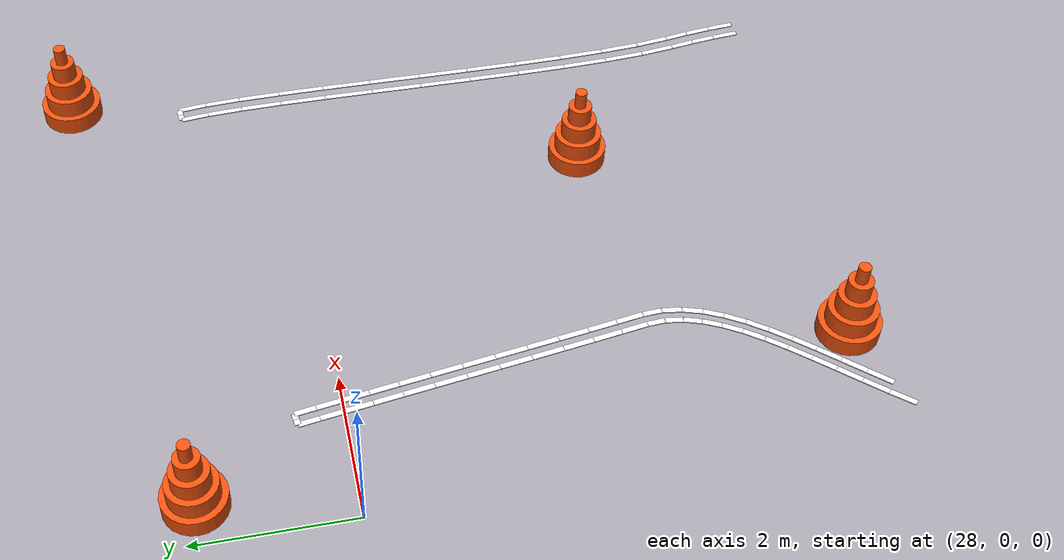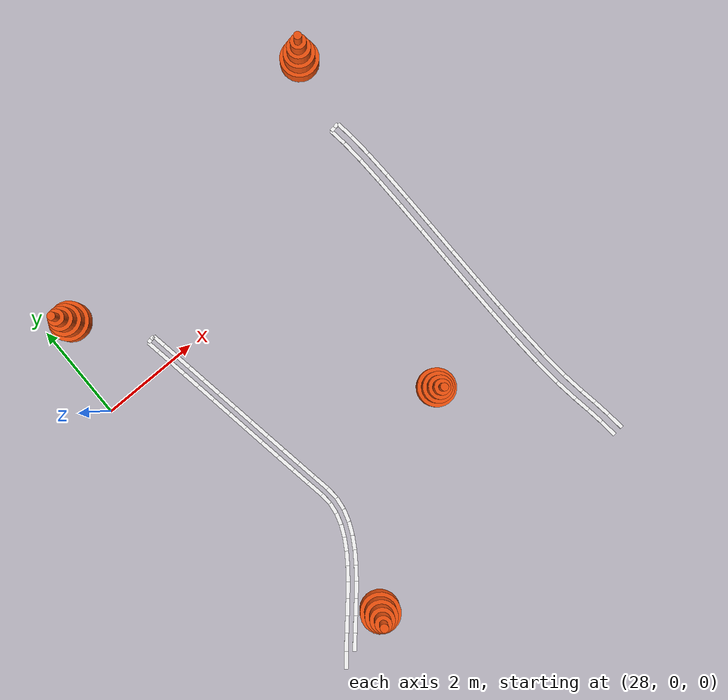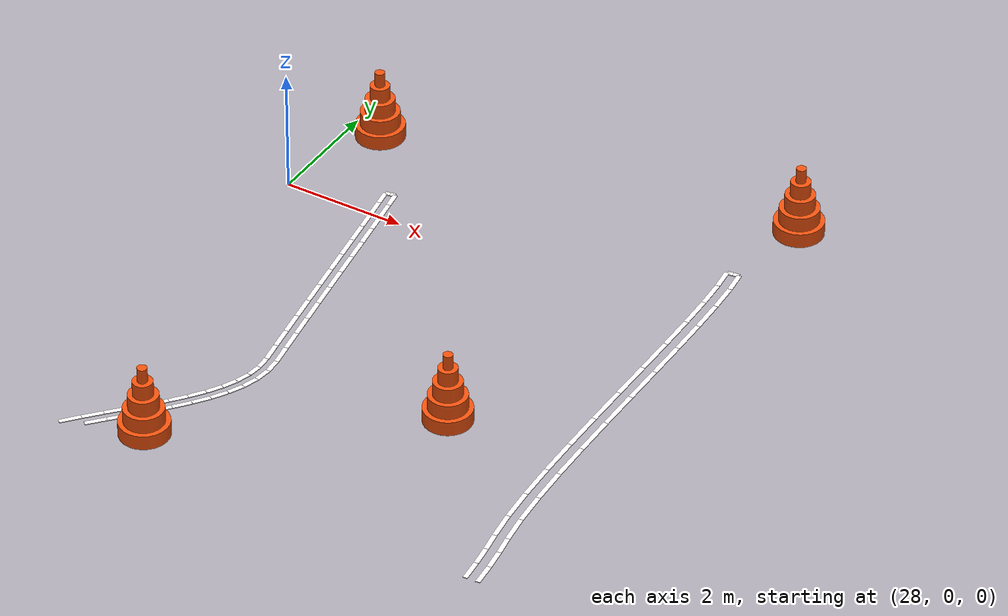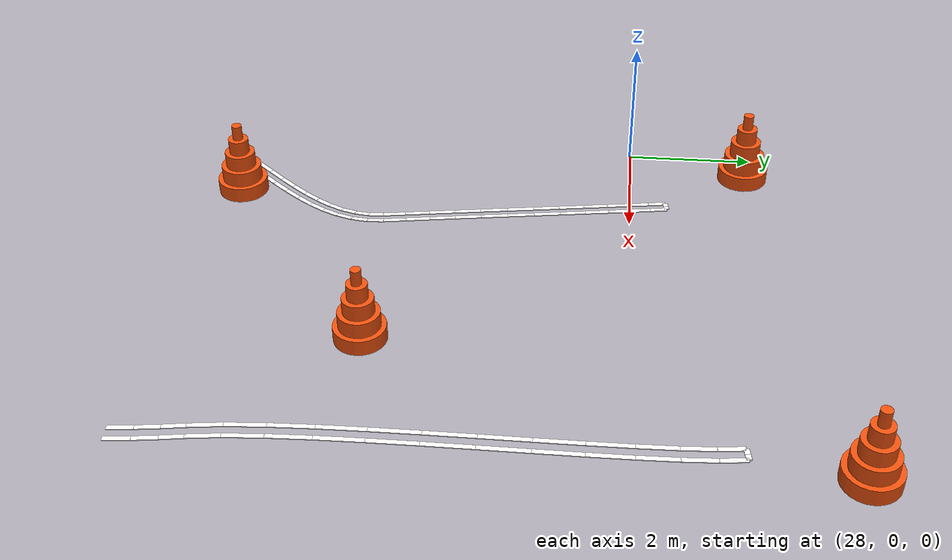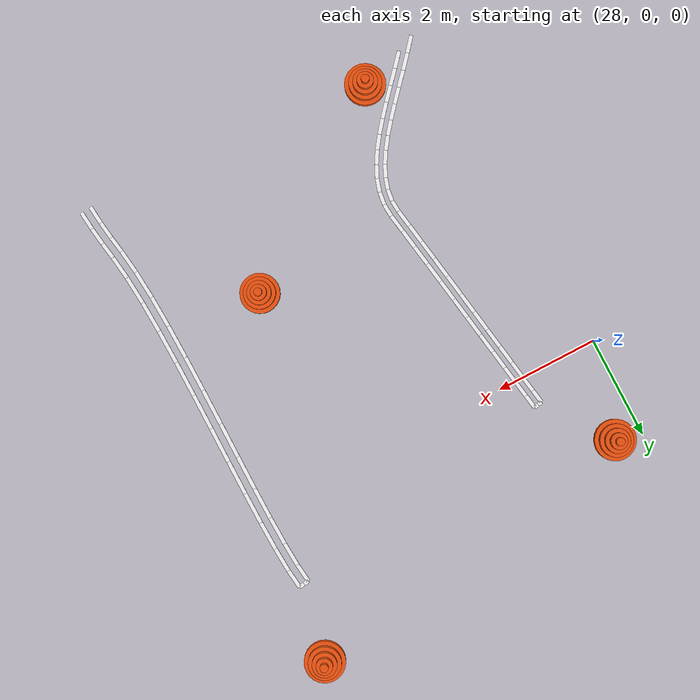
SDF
<sdf version="1.9">
 <world name="igvc_competition">
  <model name="Line_001_0404">
   <static>1</static>
   <pose>35.1947 -6.5043 0.011 0 0 1.657450</pose>
   <link name="link">
    <visual name="visual">
     <geometry><box><size>0.3593 0.0762 0.012</size></box></geometry>
     <material>
      <ambient>0.98 0.98 0.98 1</ambient>
      <diffuse>0.98 0.98 0.98 1</diffuse>
      <specular>0.05 0.05 0.05 1</specular>
      <emissive>0.9 0.9 0.9 1</emissive>
     </material>
    </visual>
   </link>
  </model>
  <model name="Line_001_0405">
   <static>1</static>
   <pose>35.3940 -6.4875 0.011 0 0 1.657652</pose>
   <link name="link">
    <visual name="visual">
     <geometry><box><size>0.3689 0.0762 0.012</size></box></geometry>
     <material>
      <ambient>0.98 0.98 0.98 1</ambient>
      <diffuse>0.98 0.98 0.98 1</diffuse>
      <specular>0.05 0.05 0.05 1</specular>
      <emissive>0.9 0.9 0.9 1</emissive>
     </material>
    </visual>
   </link>
  </model>
  <model name="Line_001_0406">
   <static>1</static>
   <pose>35.1574 -6.1561 0.011 0 0 1.698932</pose>
   <link name="link">
    <visual name="visual">
     <geometry><box><size>0.3412 0.0762 0.012</size></box></geometry>
     <material>
      <ambient>0.98 0.98 0.98 1</ambient>
      <diffuse>0.98 0.98 0.98 1</diffuse>
      <specular>0.05 0.05 0.05 1</specular>
      <emissive>0.9 0.9 0.9 1</emissive>
     </material>
    </visual>
   </link>
  </model>
  <model name="Line_001_0407">
   <static>1</static>
   <pose>35.3558 -6.1312 0.011 0 0 1.698715</pose>
   <link name="link">
    <visual name="visual">
     <geometry><box><size>0.3480 0.0762 0.012</size></box></geometry>
     <material>
      <ambient>0.98 0.98 0.98 1</ambient>
      <diffuse>0.98 0.98 0.98 1</diffuse>
      <specular>0.05 0.05 0.05 1</specular>
      <emissive>0.9 0.9 0.9 1</emissive>
     </material>
    </visual>
   </link>
  </model>
  <model name="Line_001_0408">
   <static>1</static>
   <pose>35.1105 -5.8269 0.011 0 0 1.726403</pose>
   <link name="link">
    <visual name="visual">
     <geometry><box><size>0.3239 0.0762 0.012</size></box></geometry>
     <material>
      <ambient>0.98 0.98 0.98 1</ambient>
      <diffuse>0.98 0.98 0.98 1</diffuse>
      <specular>0.05 0.05 0.05 1</specular>
      <emissive>0.9 0.9 0.9 1</emissive>
     </material>
    </visual>
   </link>
  </model>
  <model name="Line_001_0409">
   <static>1</static>
   <pose>35.3085 -5.7988 0.011 0 0 1.726595</pose>
   <link name="link">
    <visual name="visual">
     <geometry><box><size>0.3235 0.0762 0.012</size></box></geometry>
     <material>
      <ambient>0.98 0.98 0.98 1</ambient>
      <diffuse>0.98 0.98 0.98 1</diffuse>
      <specular>0.05 0.05 0.05 1</specular>
      <emissive>0.9 0.9 0.9 1</emissive>
     </material>
    </visual>
   </link>
  </model>
  <model name="Line_001_0410">
   <static>1</static>
   <pose>35.0559 -5.4306 0.011 0 0 1.694787</pose>
   <link name="link">
    <visual name="visual">
     <geometry><box><size>0.4763 0.0762 0.012</size></box></geometry>
     <material>
      <ambient>0.98 0.98 0.98 1</ambient>
      <diffuse>0.98 0.98 0.98 1</diffuse>
      <specular>0.05 0.05 0.05 1</specular>
      <emissive>0.9 0.9 0.9 1</emissive>
     </material>
    </visual>
   </link>
  </model>
  <model name="Line_001_0411">
   <static>1</static>
   <pose>35.2545 -5.4070 0.011 0 0 1.694727</pose>
   <link name="link">
    <visual name="visual">
     <geometry><box><size>0.4676 0.0762 0.012</size></box></geometry>
     <material>
      <ambient>0.98 0.98 0.98 1</ambient>
      <diffuse>0.98 0.98 0.98 1</diffuse>
      <specular>0.05 0.05 0.05 1</specular>
      <emissive>0.9 0.9 0.9 1</emissive>
     </material>
    </visual>
   </link>
  </model>
  <model name="Line_001_0412">
   <static>1</static>
   <pose>35.0069 -4.9139 0.011 0 0 1.640595</pose>
   <link name="link">
    <visual name="visual">
     <geometry><box><size>0.5621 0.0762 0.012</size></box></geometry>
     <material>
      <ambient>0.98 0.98 0.98 1</ambient>
      <diffuse>0.98 0.98 0.98 1</diffuse>
      <specular>0.05 0.05 0.05 1</specular>
      <emissive>0.9 0.9 0.9 1</emissive>
     </material>
    </visual>
   </link>
  </model>
  <model name="Line_001_0413">
   <static>1</static>
   <pose>35.2064 -4.8989 0.011 0 0 1.640417</pose>
   <link name="link">
    <visual name="visual">
     <geometry><box><size>0.5534 0.0762 0.012</size></box></geometry>
     <material>
      <ambient>0.98 0.98 0.98 1</ambient>
      <diffuse>0.98 0.98 0.98 1</diffuse>
      <specular>0.05 0.05 0.05 1</specular>
      <emissive>0.9 0.9 0.9 1</emissive>
     </material>
    </visual>
   </link>
  </model>
  <model name="Line_001_0414">
   <static>1</static>
   <pose>34.9758 -4.3197 0.011 0 0 1.607416</pose>
   <link name="link">
    <visual name="visual">
     <geometry><box><size>0.6282 0.0762 0.012</size></box></geometry>
     <material>
      <ambient>0.98 0.98 0.98 1</ambient>
      <diffuse>0.98 0.98 0.98 1</diffuse>
      <specular>0.05 0.05 0.05 1</specular>
      <emissive>0.9 0.9 0.9 1</emissive>
     </material>
    </visual>
   </link>
  </model>
  <model name="Line_001_0415">
   <static>1</static>
   <pose>35.1757 -4.3117 0.011 0 0 1.607579</pose>
   <link name="link">
    <visual name="visual">
     <geometry><box><size>0.6227 0.0762 0.012</size></box></geometry>
     <material>
      <ambient>0.98 0.98 0.98 1</ambient>
      <diffuse>0.98 0.98 0.98 1</diffuse>
      <specular>0.05 0.05 0.05 1</specular>
      <emissive>0.9 0.9 0.9 1</emissive>
     </material>
    </visual>
   </link>
  </model>
  <model name="Line_001_0416">
   <static>1</static>
   <pose>34.9590 -3.6678 0.011 0 0 1.586476</pose>
   <link name="link">
    <visual name="visual">
     <geometry><box><size>0.6761 0.0762 0.012</size></box></geometry>
     <material>
      <ambient>0.98 0.98 0.98 1</ambient>
      <diffuse>0.98 0.98 0.98 1</diffuse>
      <specular>0.05 0.05 0.05 1</specular>
      <emissive>0.9 0.9 0.9 1</emissive>
     </material>
    </visual>
   </link>
  </model>
  <model name="Line_001_0417">
   <static>1</static>
   <pose>35.1590 -3.6643 0.011 0 0 1.586404</pose>
   <link name="link">
    <visual name="visual">
     <geometry><box><size>0.6728 0.0762 0.012</size></box></geometry>
     <material>
      <ambient>0.98 0.98 0.98 1</ambient>
      <diffuse>0.98 0.98 0.98 1</diffuse>
      <specular>0.05 0.05 0.05 1</specular>
      <emissive>0.9 0.9 0.9 1</emissive>
     </material>
    </visual>
   </link>
  </model>
  <model name="Line_001_0418">
   <static>1</static>
   <pose>34.9527 -2.9772 0.011 0 0 1.573491</pose>
   <link name="link">
    <visual name="visual">
     <geometry><box><size>0.7051 0.0762 0.012</size></box></geometry>
     <material>
      <ambient>0.98 0.98 0.98 1</ambient>
      <diffuse>0.98 0.98 0.98 1</diffuse>
      <specular>0.05 0.05 0.05 1</specular>
      <emissive>0.9 0.9 0.9 1</emissive>
     </material>
    </visual>
   </link>
  </model>
  <model name="Line_001_0419">
   <static>1</static>
   <pose>35.1527 -2.9764 0.011 0 0 1.573499</pose>
   <link name="link">
    <visual name="visual">
     <geometry><box><size>0.7030 0.0762 0.012</size></box></geometry>
     <material>
      <ambient>0.98 0.98 0.98 1</ambient>
      <diffuse>0.98 0.98 0.98 1</diffuse>
      <specular>0.05 0.05 0.05 1</specular>
      <emissive>0.9 0.9 0.9 1</emissive>
     </material>
    </visual>
   </link>
  </model>
  <model name="Line_001_0420">
   <static>1</static>
   <pose>34.9534 -2.2672 0.011 0 0 1.566320</pose>
   <link name="link">
    <visual name="visual">
     <geometry><box><size>0.7149 0.0762 0.012</size></box></geometry>
     <material>
      <ambient>0.98 0.98 0.98 1</ambient>
      <diffuse>0.98 0.98 0.98 1</diffuse>
      <specular>0.05 0.05 0.05 1</specular>
      <emissive>0.9 0.9 0.9 1</emissive>
     </material>
    </visual>
   </link>
  </model>
  <model name="Line_001_0421">
   <static>1</static>
   <pose>35.1534 -2.2679 0.011 0 0 1.566315</pose>
   <link name="link">
    <visual name="visual">
     <geometry><box><size>0.7140 0.0762 0.012</size></box></geometry>
     <material>
      <ambient>0.98 0.98 0.98 1</ambient>
      <diffuse>0.98 0.98 0.98 1</diffuse>
      <specular>0.05 0.05 0.05 1</specular>
      <emissive>0.9 0.9 0.9 1</emissive>
     </material>
    </visual>
   </link>
  </model>
  <model name="Line_001_0422">
   <static>1</static>
   <pose>34.9573 -1.5572 0.011 0 0 1.564133</pose>
   <link name="link">
    <visual name="visual">
     <geometry><box><size>0.7053 0.0762 0.012</size></box></geometry>
     <material>
      <ambient>0.98 0.98 0.98 1</ambient>
      <diffuse>0.98 0.98 0.98 1</diffuse>
      <specular>0.05 0.05 0.05 1</specular>
      <emissive>0.9 0.9 0.9 1</emissive>
     </material>
    </visual>
   </link>
  </model>
  <model name="Line_001_0423">
   <static>1</static>
   <pose>35.1574 -1.5583 0.011 0 0 1.564133</pose>
   <link name="link">
    <visual name="visual">
     <geometry><box><size>0.7053 0.0762 0.012</size></box></geometry>
     <material>
      <ambient>0.98 0.98 0.98 1</ambient>
      <diffuse>0.98 0.98 0.98 1</diffuse>
      <specular>0.05 0.05 0.05 1</specular>
      <emissive>0.9 0.9 0.9 1</emissive>
     </material>
    </visual>
   </link>
  </model>
  <model name="Line_001_0424">
   <static>1</static>
   <pose>34.9611 -0.8664 0.011 0 0 1.566803</pose>
   <link name="link">
    <visual name="visual">
     <geometry><box><size>0.6761 0.0762 0.012</size></box></geometry>
     <material>
      <ambient>0.98 0.98 0.98 1</ambient>
      <diffuse>0.98 0.98 0.98 1</diffuse>
      <specular>0.05 0.05 0.05 1</specular>
      <emissive>0.9 0.9 0.9 1</emissive>
     </material>
    </visual>
   </link>
  </model>
  <model name="Line_001_0425">
   <static>1</static>
   <pose>35.1611 -0.8669 0.011 0 0 1.566810</pose>
   <link name="link">
    <visual name="visual">
     <geometry><box><size>0.6773 0.0762 0.012</size></box></geometry>
     <material>
      <ambient>0.98 0.98 0.98 1</ambient>
      <diffuse>0.98 0.98 0.98 1</diffuse>
      <specular>0.05 0.05 0.05 1</specular>
      <emissive>0.9 0.9 0.9 1</emissive>
     </material>
    </visual>
   </link>
  </model>
  <model name="Line_001_0426">
   <static>1</static>
   <pose>34.9609 -0.2147 0.011 0 0 1.575737</pose>
   <link name="link">
    <visual name="visual">
     <geometry><box><size>0.6275 0.0762 0.012</size></box></geometry>
     <material>
      <ambient>0.98 0.98 0.98 1</ambient>
      <diffuse>0.98 0.98 0.98 1</diffuse>
      <specular>0.05 0.05 0.05 1</specular>
      <emissive>0.9 0.9 0.9 1</emissive>
     </material>
    </visual>
   </link>
  </model>
  <model name="Line_001_0427">
   <static>1</static>
   <pose>35.1608 -0.2132 0.011 0 0 1.575716</pose>
   <link name="link">
    <visual name="visual">
     <geometry><box><size>0.6301 0.0762 0.012</size></box></geometry>
     <material>
      <ambient>0.98 0.98 0.98 1</ambient>
      <diffuse>0.98 0.98 0.98 1</diffuse>
      <specular>0.05 0.05 0.05 1</specular>
      <emissive>0.9 0.9 0.9 1</emissive>
     </material>
    </visual>
   </link>
  </model>
  <model name="Line_001_0428">
   <static>1</static>
   <pose>34.9532 0.3785 0.011 0 0 1.592625</pose>
   <link name="link">
    <visual name="visual">
     <geometry><box><size>0.5589 0.0762 0.012</size></box></geometry>
     <material>
      <ambient>0.98 0.98 0.98 1</ambient>
      <diffuse>0.98 0.98 0.98 1</diffuse>
      <specular>0.05 0.05 0.05 1</specular>
      <emissive>0.9 0.9 0.9 1</emissive>
     </material>
    </visual>
   </link>
  </model>
  <model name="Line_001_0429">
   <static>1</static>
   <pose>35.1531 0.3836 0.011 0 0 1.592794</pose>
   <link name="link">
    <visual name="visual">
     <geometry><box><size>0.5637 0.0762 0.012</size></box></geometry>
     <material>
      <ambient>0.98 0.98 0.98 1</ambient>
      <diffuse>0.98 0.98 0.98 1</diffuse>
      <specular>0.05 0.05 0.05 1</specular>
      <emissive>0.9 0.9 0.9 1</emissive>
     </material>
    </visual>
   </link>
  </model>
  <model name="Line_001_0430">
   <static>1</static>
   <pose>34.9346 0.8928 0.011 0 0 1.623949</pose>
   <link name="link">
    <visual name="visual">
     <geometry><box><size>0.4706 0.0762 0.012</size></box></geometry>
     <material>
      <ambient>0.98 0.98 0.98 1</ambient>
      <diffuse>0.98 0.98 0.98 1</diffuse>
      <specular>0.05 0.05 0.05 1</specular>
      <emissive>0.9 0.9 0.9 1</emissive>
     </material>
    </visual>
   </link>
  </model>
  <model name="Line_001_0431">
   <static>1</static>
   <pose>35.1342 0.9049 0.011 0 0 1.623982</pose>
   <link name="link">
    <visual name="visual">
     <geometry><box><size>0.4797 0.0762 0.012</size></box></geometry>
     <material>
      <ambient>0.98 0.98 0.98 1</ambient>
      <diffuse>0.98 0.98 0.98 1</diffuse>
      <specular>0.05 0.05 0.05 1</specular>
      <emissive>0.9 0.9 0.9 1</emissive>
     </material>
    </visual>
   </link>
  </model>
  <model name="Line_001_0432">
   <static>1</static>
   <pose>34.9303 1.4985 0.011 0 0 0.113309</pose>
   <link name="link">
    <visual name="visual">
     <geometry><box><size>0.0999 0.0762 0.012</size></box></geometry>
     <material>
      <ambient>0.98 0.98 0.98 1</ambient>
      <diffuse>0.98 0.98 0.98 1</diffuse>
      <specular>0.05 0.05 0.05 1</specular>
      <emissive>0.9 0.9 0.9 1</emissive>
     </material>
    </visual>
   </link>
  </model>
  <model name="Line_001_0433">
   <static>1</static>
   <pose>34.9014 1.3103 0.011 0 0 1.683738</pose>
   <link name="link">
    <visual name="visual">
     <geometry><box><size>0.3673 0.0762 0.012</size></box></geometry>
     <material>
      <ambient>0.98 0.98 0.98 1</ambient>
      <diffuse>0.98 0.98 0.98 1</diffuse>
      <specular>0.05 0.05 0.05 1</specular>
      <emissive>0.9 0.9 0.9 1</emissive>
     </material>
    </visual>
   </link>
  </model>
  <model name="Line_001_0434">
   <static>1</static>
   <pose>35.1004 1.3299 0.011 0 0 1.683524</pose>
   <link name="link">
    <visual name="visual">
     <geometry><box><size>0.3734 0.0762 0.012</size></box></geometry>
     <material>
      <ambient>0.98 0.98 0.98 1</ambient>
      <diffuse>0.98 0.98 0.98 1</diffuse>
      <specular>0.05 0.05 0.05 1</specular>
      <emissive>0.9 0.9 0.9 1</emissive>
     </material>
    </visual>
   </link>
  </model>
  <model name="Line_001_0435">
   <static>1</static>
   <pose>35.0297 1.5097 0.011 0 0 -3.028397</pose>
   <link name="link">
    <visual name="visual">
     <geometry><box><size>0.1000 0.0762 0.012</size></box></geometry>
     <material>
      <ambient>0.98 0.98 0.98 1</ambient>
      <diffuse>0.98 0.98 0.98 1</diffuse>
      <specular>0.05 0.05 0.05 1</specular>
      <emissive>0.9 0.9 0.9 1</emissive>
     </material>
    </visual>
   </link>
  </model>
  <model name="Line_002_0386">
   <static>1</static>
   <pose>28.4415 -6.5848 0.011 0 0 0.865637</pose>
   <link name="link">
    <visual name="visual">
     <geometry><box><size>0.3379 0.0762 0.012</size></box></geometry>
     <material>
      <ambient>0.98 0.98 0.98 1</ambient>
      <diffuse>0.98 0.98 0.98 1</diffuse>
      <specular>0.05 0.05 0.05 1</specular>
      <emissive>0.9 0.9 0.9 1</emissive>
     </material>
    </visual>
   </link>
  </model>
  <model name="Line_002_0388">
   <static>1</static>
   <pose>28.6637 -6.3296 0.011 0 0 0.843419</pose>
   <link name="link">
    <visual name="visual">
     <geometry><box><size>0.3390 0.0762 0.012</size></box></geometry>
     <material>
      <ambient>0.98 0.98 0.98 1</ambient>
      <diffuse>0.98 0.98 0.98 1</diffuse>
      <specular>0.05 0.05 0.05 1</specular>
      <emissive>0.9 0.9 0.9 1</emissive>
     </material>
    </visual>
   </link>
  </model>
  <model name="Line_002_0389">
   <static>1</static>
   <pose>28.7871 -6.4318 0.011 0 0 0.843019</pose>
   <link name="link">
    <visual name="visual">
     <geometry><box><size>0.3364 0.0762 0.012</size></box></geometry>
     <material>
      <ambient>0.98 0.98 0.98 1</ambient>
      <diffuse>0.98 0.98 0.98 1</diffuse>
      <specular>0.05 0.05 0.05 1</specular>
      <emissive>0.9 0.9 0.9 1</emissive>
     </material>
    </visual>
   </link>
  </model>
  <model name="Line_002_0390">
   <static>1</static>
   <pose>28.8882 -6.0798 0.011 0 0 0.833850</pose>
   <link name="link">
    <visual name="visual">
     <geometry><box><size>0.3329 0.0762 0.012</size></box></geometry>
     <material>
      <ambient>0.98 0.98 0.98 1</ambient>
      <diffuse>0.98 0.98 0.98 1</diffuse>
      <specular>0.05 0.05 0.05 1</specular>
      <emissive>0.9 0.9 0.9 1</emissive>
     </material>
    </visual>
   </link>
  </model>
  <model name="Line_002_0391">
   <static>1</static>
   <pose>29.0107 -6.1831 0.011 0 0 0.833912</pose>
   <link name="link">
    <visual name="visual">
     <geometry><box><size>0.3324 0.0762 0.012</size></box></geometry>
     <material>
      <ambient>0.98 0.98 0.98 1</ambient>
      <diffuse>0.98 0.98 0.98 1</diffuse>
      <specular>0.05 0.05 0.05 1</specular>
      <emissive>0.9 0.9 0.9 1</emissive>
     </material>
    </visual>
   </link>
  </model>
  <model name="Line_002_0392">
   <static>1</static>
   <pose>29.1084 -5.8361 0.011 0 0 0.838234</pose>
   <link name="link">
    <visual name="visual">
     <geometry><box><size>0.3240 0.0762 0.012</size></box></geometry>
     <material>
      <ambient>0.98 0.98 0.98 1</ambient>
      <diffuse>0.98 0.98 0.98 1</diffuse>
      <specular>0.05 0.05 0.05 1</specular>
      <emissive>0.9 0.9 0.9 1</emissive>
     </material>
    </visual>
   </link>
  </model>
  <model name="Line_002_0393">
   <static>1</static>
   <pose>29.2314 -5.9389 0.011 0 0 0.838141</pose>
   <link name="link">
    <visual name="visual">
     <geometry><box><size>0.3259 0.0762 0.012</size></box></geometry>
     <material>
      <ambient>0.98 0.98 0.98 1</ambient>
      <diffuse>0.98 0.98 0.98 1</diffuse>
      <specular>0.05 0.05 0.05 1</specular>
      <emissive>0.9 0.9 0.9 1</emissive>
     </material>
    </visual>
   </link>
  </model>
  <model name="Line_002_0394">
   <static>1</static>
   <pose>29.3192 -5.5976 0.011 0 0 0.856512</pose>
   <link name="link">
    <visual name="visual">
     <geometry><box><size>0.3125 0.0762 0.012</size></box></geometry>
     <material>
      <ambient>0.98 0.98 0.98 1</ambient>
      <diffuse>0.98 0.98 0.98 1</diffuse>
      <specular>0.05 0.05 0.05 1</specular>
      <emissive>0.9 0.9 0.9 1</emissive>
     </material>
    </visual>
   </link>
  </model>
  <model name="Line_002_0395">
   <static>1</static>
   <pose>29.4442 -5.6980 0.011 0 0 0.856658</pose>
   <link name="link">
    <visual name="visual">
     <geometry><box><size>0.3168 0.0762 0.012</size></box></geometry>
     <material>
      <ambient>0.98 0.98 0.98 1</ambient>
      <diffuse>0.98 0.98 0.98 1</diffuse>
      <specular>0.05 0.05 0.05 1</specular>
      <emissive>0.9 0.9 0.9 1</emissive>
     </material>
    </visual>
   </link>
  </model>
  <model name="Line_002_0396">
   <static>1</static>
   <pose>29.5153 -5.3634 0.011 0 0 0.891713</pose>
   <link name="link">
    <visual name="visual">
     <geometry><box><size>0.2985 0.0762 0.012</size></box></geometry>
     <material>
      <ambient>0.98 0.98 0.98 1</ambient>
      <diffuse>0.98 0.98 0.98 1</diffuse>
      <specular>0.05 0.05 0.05 1</specular>
      <emissive>0.9 0.9 0.9 1</emissive>
     </material>
    </visual>
   </link>
  </model>
  <model name="Line_002_0397">
   <static>1</static>
   <pose>29.6439 -5.4593 0.011 0 0 0.891970</pose>
   <link name="link">
    <visual name="visual">
     <geometry><box><size>0.3058 0.0762 0.012</size></box></geometry>
     <material>
      <ambient>0.98 0.98 0.98 1</ambient>
      <diffuse>0.98 0.98 0.98 1</diffuse>
      <specular>0.05 0.05 0.05 1</specular>
      <emissive>0.9 0.9 0.9 1</emissive>
     </material>
    </visual>
   </link>
  </model>
  <model name="Line_002_0398">
   <static>1</static>
   <pose>29.6917 -5.1326 0.011 0 0 0.945981</pose>
   <link name="link">
    <visual name="visual">
     <geometry><box><size>0.2826 0.0762 0.012</size></box></geometry>
     <material>
      <ambient>0.98 0.98 0.98 1</ambient>
      <diffuse>0.98 0.98 0.98 1</diffuse>
      <specular>0.05 0.05 0.05 1</specular>
      <emissive>0.9 0.9 0.9 1</emissive>
     </material>
    </visual>
   </link>
  </model>
  <model name="Line_002_0399">
   <static>1</static>
   <pose>29.8256 -5.2214 0.011 0 0 0.946264</pose>
   <link name="link">
    <visual name="visual">
     <geometry><box><size>0.2931 0.0762 0.012</size></box></geometry>
     <material>
      <ambient>0.98 0.98 0.98 1</ambient>
      <diffuse>0.98 0.98 0.98 1</diffuse>
      <specular>0.05 0.05 0.05 1</specular>
      <emissive>0.9 0.9 0.9 1</emissive>
     </material>
    </visual>
   </link>
  </model>
  <model name="Line_002_0400">
   <static>1</static>
   <pose>29.8433 -4.9047 0.011 0 0 1.023979</pose>
   <link name="link">
    <visual name="visual">
     <geometry><box><size>0.2654 0.0762 0.012</size></box></geometry>
     <material>
      <ambient>0.98 0.98 0.98 1</ambient>
      <diffuse>0.98 0.98 0.98 1</diffuse>
      <specular>0.05 0.05 0.05 1</specular>
      <emissive>0.9 0.9 0.9 1</emissive>
     </material>
    </visual>
   </link>
  </model>
  <model name="Line_002_0401">
   <static>1</static>
   <pose>29.9840 -4.9829 0.011 0 0 1.024313</pose>
   <link name="link">
    <visual name="visual">
     <geometry><box><size>0.2800 0.0762 0.012</size></box></geometry>
     <material>
      <ambient>0.98 0.98 0.98 1</ambient>
      <diffuse>0.98 0.98 0.98 1</diffuse>
      <specular>0.05 0.05 0.05 1</specular>
      <emissive>0.9 0.9 0.9 1</emissive>
     </material>
    </visual>
   </link>
  </model>
  <model name="Line_002_0402">
   <static>1</static>
   <pose>29.9654 -4.6789 0.011 0 0 1.129819</pose>
   <link name="link">
    <visual name="visual">
     <geometry><box><size>0.2486 0.0762 0.012</size></box></geometry>
     <material>
      <ambient>0.98 0.98 0.98 1</ambient>
      <diffuse>0.98 0.98 0.98 1</diffuse>
      <specular>0.05 0.05 0.05 1</specular>
      <emissive>0.9 0.9 0.9 1</emissive>
     </material>
    </visual>
   </link>
  </model>
  <model name="Line_002_0403">
   <static>1</static>
   <pose>30.1139 -4.7422 0.011 0 0 1.130358</pose>
   <link name="link">
    <visual name="visual">
     <geometry><box><size>0.2679 0.0762 0.012</size></box></geometry>
     <material>
      <ambient>0.98 0.98 0.98 1</ambient>
      <diffuse>0.98 0.98 0.98 1</diffuse>
      <specular>0.05 0.05 0.05 1</specular>
      <emissive>0.9 0.9 0.9 1</emissive>
     </material>
    </visual>
   </link>
  </model>
  <model name="Line_002_0404">
   <static>1</static>
   <pose>30.0534 -4.4547 0.011 0 0 1.267402</pose>
   <link name="link">
    <visual name="visual">
     <geometry><box><size>0.2343 0.0762 0.012</size></box></geometry>
     <material>
      <ambient>0.98 0.98 0.98 1</ambient>
      <diffuse>0.98 0.98 0.98 1</diffuse>
      <specular>0.05 0.05 0.05 1</specular>
      <emissive>0.9 0.9 0.9 1</emissive>
     </material>
    </visual>
   </link>
  </model>
  <model name="Line_002_0405">
   <static>1</static>
   <pose>30.2095 -4.4977 0.011 0 0 1.268397</pose>
   <link name="link">
    <visual name="visual">
     <geometry><box><size>0.2582 0.0762 0.012</size></box></geometry>
     <material>
      <ambient>0.98 0.98 0.98 1</ambient>
      <diffuse>0.98 0.98 0.98 1</diffuse>
      <specular>0.05 0.05 0.05 1</specular>
      <emissive>0.9 0.9 0.9 1</emissive>
     </material>
    </visual>
   </link>
  </model>
  <model name="Line_002_0406">
   <static>1</static>
   <pose>30.1033 -4.2310 0.011 0 0 1.438362</pose>
   <link name="link">
    <visual name="visual">
     <geometry><box><size>0.2257 0.0762 0.012</size></box></geometry>
     <material>
      <ambient>0.98 0.98 0.98 1</ambient>
      <diffuse>0.98 0.98 0.98 1</diffuse>
      <specular>0.05 0.05 0.05 1</specular>
      <emissive>0.9 0.9 0.9 1</emissive>
     </material>
    </visual>
   </link>
  </model>
  <model name="Line_002_0407">
   <static>1</static>
   <pose>30.2646 -4.2486 0.011 0 0 1.438869</pose>
   <link name="link">
    <visual name="visual">
     <geometry><box><size>0.2539 0.0762 0.012</size></box></geometry>
     <material>
      <ambient>0.98 0.98 0.98 1</ambient>
      <diffuse>0.98 0.98 0.98 1</diffuse>
      <specular>0.05 0.05 0.05 1</specular>
      <emissive>0.9 0.9 0.9 1</emissive>
     </material>
    </visual>
   </link>
  </model>
  <model name="Line_002_0408">
   <static>1</static>
   <pose>30.1108 -4.0041 0.011 0 0 1.635000</pose>
   <link name="link">
    <visual name="visual">
     <geometry><box><size>0.2307 0.0762 0.012</size></box></geometry>
     <material>
      <ambient>0.98 0.98 0.98 1</ambient>
      <diffuse>0.98 0.98 0.98 1</diffuse>
      <specular>0.05 0.05 0.05 1</specular>
      <emissive>0.9 0.9 0.9 1</emissive>
     </material>
    </visual>
   </link>
  </model>
  <model name="Line_002_0409">
   <static>1</static>
   <pose>30.2735 -3.9964 0.011 0 0 1.632846</pose>
   <link name="link">
    <visual name="visual">
     <geometry><box><size>0.2532 0.0762 0.012</size></box></geometry>
     <material>
      <ambient>0.98 0.98 0.98 1</ambient>
      <diffuse>0.98 0.98 0.98 1</diffuse>
      <specular>0.05 0.05 0.05 1</specular>
      <emissive>0.9 0.9 0.9 1</emissive>
     </material>
    </visual>
   </link>
  </model>
  <model name="Line_002_0410">
   <static>1</static>
   <pose>30.0753 -3.7176 0.011 0 0 1.733248</pose>
   <link name="link">
    <visual name="visual">
     <geometry><box><size>0.3475 0.0762 0.012</size></box></geometry>
     <material>
      <ambient>0.98 0.98 0.98 1</ambient>
      <diffuse>0.98 0.98 0.98 1</diffuse>
      <specular>0.05 0.05 0.05 1</specular>
      <emissive>0.9 0.9 0.9 1</emissive>
     </material>
    </visual>
   </link>
  </model>
  <model name="Line_002_0411">
   <static>1</static>
   <pose>30.2370 -3.6951 0.011 0 0 1.732747</pose>
   <link name="link">
    <visual name="visual">
     <geometry><box><size>0.3547 0.0762 0.012</size></box></geometry>
     <material>
      <ambient>0.98 0.98 0.98 1</ambient>
      <diffuse>0.98 0.98 0.98 1</diffuse>
      <specular>0.05 0.05 0.05 1</specular>
      <emissive>0.9 0.9 0.9 1</emissive>
     </material>
    </visual>
   </link>
  </model>
  <model name="Line_002_0412">
   <static>1</static>
   <pose>30.0172 -3.3587 0.011 0 0 1.729795</pose>
   <link name="link">
    <visual name="visual">
     <geometry><box><size>0.3796 0.0762 0.012</size></box></geometry>
     <material>
      <ambient>0.98 0.98 0.98 1</ambient>
      <diffuse>0.98 0.98 0.98 1</diffuse>
      <specular>0.05 0.05 0.05 1</specular>
      <emissive>0.9 0.9 0.9 1</emissive>
     </material>
    </visual>
   </link>
  </model>
  <model name="Line_002_0413">
   <static>1</static>
   <pose>30.1784 -3.3328 0.011 0 0 1.729702</pose>
   <link name="link">
    <visual name="visual">
     <geometry><box><size>0.3792 0.0762 0.012</size></box></geometry>
     <material>
      <ambient>0.98 0.98 0.98 1</ambient>
      <diffuse>0.98 0.98 0.98 1</diffuse>
      <specular>0.05 0.05 0.05 1</specular>
      <emissive>0.9 0.9 0.9 1</emissive>
     </material>
    </visual>
   </link>
  </model>
  <model name="Line_002_0414">
   <static>1</static>
   <pose>29.9559 -2.9734 0.011 0 0 1.727411</pose>
   <link name="link">
    <visual name="visual">
     <geometry><box><size>0.4007 0.0762 0.012</size></box></geometry>
     <material>
      <ambient>0.98 0.98 0.98 1</ambient>
      <diffuse>0.98 0.98 0.98 1</diffuse>
      <specular>0.05 0.05 0.05 1</specular>
      <emissive>0.9 0.9 0.9 1</emissive>
     </material>
    </visual>
   </link>
  </model>
  <model name="Line_002_0415">
   <static>1</static>
   <pose>30.1171 -2.9478 0.011 0 0 1.727489</pose>
   <link name="link">
    <visual name="visual">
     <geometry><box><size>0.4005 0.0762 0.012</size></box></geometry>
     <material>
      <ambient>0.98 0.98 0.98 1</ambient>
      <diffuse>0.98 0.98 0.98 1</diffuse>
      <specular>0.05 0.05 0.05 1</specular>
      <emissive>0.9 0.9 0.9 1</emissive>
     </material>
    </visual>
   </link>
  </model>
  <model name="Line_002_0416">
   <static>1</static>
   <pose>29.8926 -2.5706 0.011 0 0 1.725719</pose>
   <link name="link">
    <visual name="visual">
     <geometry><box><size>0.4148 0.0762 0.012</size></box></geometry>
     <material>
      <ambient>0.98 0.98 0.98 1</ambient>
      <diffuse>0.98 0.98 0.98 1</diffuse>
      <specular>0.05 0.05 0.05 1</specular>
      <emissive>0.9 0.9 0.9 1</emissive>
     </material>
    </visual>
   </link>
  </model>
  <model name="Line_002_0417">
   <static>1</static>
   <pose>30.0540 -2.5453 0.011 0 0 1.725592</pose>
   <link name="link">
    <visual name="visual">
     <geometry><box><size>0.4145 0.0762 0.012</size></box></geometry>
     <material>
      <ambient>0.98 0.98 0.98 1</ambient>
      <diffuse>0.98 0.98 0.98 1</diffuse>
      <specular>0.05 0.05 0.05 1</specular>
      <emissive>0.9 0.9 0.9 1</emissive>
     </material>
    </visual>
   </link>
  </model>
  <model name="Line_002_0418">
   <static>1</static>
   <pose>29.8283 -2.1574 0.011 0 0 1.724834</pose>
   <link name="link">
    <visual name="visual">
     <geometry><box><size>0.4217 0.0762 0.012</size></box></geometry>
     <material>
      <ambient>0.98 0.98 0.98 1</ambient>
      <diffuse>0.98 0.98 0.98 1</diffuse>
      <specular>0.05 0.05 0.05 1</specular>
      <emissive>0.9 0.9 0.9 1</emissive>
     </material>
    </visual>
   </link>
  </model>
  <model name="Line_002_0419">
   <static>1</static>
   <pose>29.9897 -2.1322 0.011 0 0 1.724636</pose>
   <link name="link">
    <visual name="visual">
     <geometry><box><size>0.4216 0.0762 0.012</size></box></geometry>
     <material>
      <ambient>0.98 0.98 0.98 1</ambient>
      <diffuse>0.98 0.98 0.98 1</diffuse>
      <specular>0.05 0.05 0.05 1</specular>
      <emissive>0.9 0.9 0.9 1</emissive>
     </material>
    </visual>
   </link>
  </model>
  <model name="Line_002_0420">
   <static>1</static>
   <pose>29.7638 -1.7408 0.011 0 0 1.723969</pose>
   <link name="link">
    <visual name="visual">
     <geometry><box><size>0.4214 0.0762 0.012</size></box></geometry>
     <material>
      <ambient>0.98 0.98 0.98 1</ambient>
      <diffuse>0.98 0.98 0.98 1</diffuse>
      <specular>0.05 0.05 0.05 1</specular>
      <emissive>0.9 0.9 0.9 1</emissive>
     </material>
    </visual>
   </link>
  </model>
  <model name="Line_002_0421">
   <static>1</static>
   <pose>29.9252 -1.7157 0.011 0 0 1.724005</pose>
   <link name="link">
    <visual name="visual">
     <geometry><box><size>0.4213 0.0762 0.012</size></box></geometry>
     <material>
      <ambient>0.98 0.98 0.98 1</ambient>
      <diffuse>0.98 0.98 0.98 1</diffuse>
      <specular>0.05 0.05 0.05 1</specular>
      <emissive>0.9 0.9 0.9 1</emissive>
     </material>
    </visual>
   </link>
  </model>
  <model name="Line_002_0422">
   <static>1</static>
   <pose>29.7001 -1.3278 0.011 0 0 1.723758</pose>
   <link name="link">
    <visual name="visual">
     <geometry><box><size>0.4141 0.0762 0.012</size></box></geometry>
     <material>
      <ambient>0.98 0.98 0.98 1</ambient>
      <diffuse>0.98 0.98 0.98 1</diffuse>
      <specular>0.05 0.05 0.05 1</specular>
      <emissive>0.9 0.9 0.9 1</emissive>
     </material>
    </visual>
   </link>
  </model>
  <model name="Line_002_0423">
   <static>1</static>
   <pose>29.8615 -1.3029 0.011 0 0 1.723996</pose>
   <link name="link">
    <visual name="visual">
     <geometry><box><size>0.4142 0.0762 0.012</size></box></geometry>
     <material>
      <ambient>0.98 0.98 0.98 1</ambient>
      <diffuse>0.98 0.98 0.98 1</diffuse>
      <specular>0.05 0.05 0.05 1</specular>
      <emissive>0.9 0.9 0.9 1</emissive>
     </material>
    </visual>
   </link>
  </model>
  <model name="Line_002_0424">
   <static>1</static>
   <pose>29.6380 -0.9257 0.011 0 0 1.724055</pose>
   <link name="link">
    <visual name="visual">
     <geometry><box><size>0.3996 0.0762 0.012</size></box></geometry>
     <material>
      <ambient>0.98 0.98 0.98 1</ambient>
      <diffuse>0.98 0.98 0.98 1</diffuse>
      <specular>0.05 0.05 0.05 1</specular>
      <emissive>0.9 0.9 0.9 1</emissive>
     </material>
    </visual>
   </link>
  </model>
  <model name="Line_002_0425">
   <static>1</static>
   <pose>29.7994 -0.9007 0.011 0 0 1.724016</pose>
   <link name="link">
    <visual name="visual">
     <geometry><box><size>0.3997 0.0762 0.012</size></box></geometry>
     <material>
      <ambient>0.98 0.98 0.98 1</ambient>
      <diffuse>0.98 0.98 0.98 1</diffuse>
      <specular>0.05 0.05 0.05 1</specular>
      <emissive>0.9 0.9 0.9 1</emissive>
     </material>
    </visual>
   </link>
  </model>
  <model name="Line_002_0426">
   <static>1</static>
   <pose>29.5785 -0.5415 0.011 0 0 1.724813</pose>
   <link name="link">
    <visual name="visual">
     <geometry><box><size>0.3781 0.0762 0.012</size></box></geometry>
     <material>
      <ambient>0.98 0.98 0.98 1</ambient>
      <diffuse>0.98 0.98 0.98 1</diffuse>
      <specular>0.05 0.05 0.05 1</specular>
      <emissive>0.9 0.9 0.9 1</emissive>
     </material>
    </visual>
   </link>
  </model>
  <model name="Line_002_0427">
   <static>1</static>
   <pose>29.7399 -0.5163 0.011 0 0 1.724732</pose>
   <link name="link">
    <visual name="visual">
     <geometry><box><size>0.3783 0.0762 0.012</size></box></geometry>
     <material>
      <ambient>0.98 0.98 0.98 1</ambient>
      <diffuse>0.98 0.98 0.98 1</diffuse>
      <specular>0.05 0.05 0.05 1</specular>
      <emissive>0.9 0.9 0.9 1</emissive>
     </material>
    </visual>
   </link>
  </model>
  <model name="Line_002_0428">
   <static>1</static>
   <pose>29.5224 -0.1821 0.011 0 0 1.726253</pose>
   <link name="link">
    <visual name="visual">
     <geometry><box><size>0.3494 0.0762 0.012</size></box></geometry>
     <material>
      <ambient>0.98 0.98 0.98 1</ambient>
      <diffuse>0.98 0.98 0.98 1</diffuse>
      <specular>0.05 0.05 0.05 1</specular>
      <emissive>0.9 0.9 0.9 1</emissive>
     </material>
    </visual>
   </link>
  </model>
  <model name="Line_002_0429">
   <static>1</static>
   <pose>29.6838 -0.1567 0.011 0 0 1.726447</pose>
   <link name="link">
    <visual name="visual">
     <geometry><box><size>0.3496 0.0762 0.012</size></box></geometry>
     <material>
      <ambient>0.98 0.98 0.98 1</ambient>
      <diffuse>0.98 0.98 0.98 1</diffuse>
      <specular>0.05 0.05 0.05 1</specular>
      <emissive>0.9 0.9 0.9 1</emissive>
     </material>
    </visual>
   </link>
  </model>
  <model name="Line_002_0430">
   <static>1</static>
   <pose>29.4708 0.1452 0.011 0 0 1.728758</pose>
   <link name="link">
    <visual name="visual">
     <geometry><box><size>0.3134 0.0762 0.012</size></box></geometry>
     <material>
      <ambient>0.98 0.98 0.98 1</ambient>
      <diffuse>0.98 0.98 0.98 1</diffuse>
      <specular>0.05 0.05 0.05 1</specular>
      <emissive>0.9 0.9 0.9 1</emissive>
     </material>
    </visual>
   </link>
  </model>
  <model name="Line_002_0431">
   <static>1</static>
   <pose>29.6320 0.1711 0.011 0 0 1.728458</pose>
   <link name="link">
    <visual name="visual">
     <geometry><box><size>0.3140 0.0762 0.012</size></box></geometry>
     <material>
      <ambient>0.98 0.98 0.98 1</ambient>
      <diffuse>0.98 0.98 0.98 1</diffuse>
      <specular>0.05 0.05 0.05 1</specular>
      <emissive>0.9 0.9 0.9 1</emissive>
     </material>
    </visual>
   </link>
  </model>
  <model name="Line_002_0432">
   <static>1</static>
   <pose>29.4431 0.5737 0.011 0 0 0.162745</pose>
   <link name="link">
    <visual name="visual">
     <geometry><box><size>0.0821 0.0762 0.012</size></box></geometry>
     <material>
      <ambient>0.98 0.98 0.98 1</ambient>
      <diffuse>0.98 0.98 0.98 1</diffuse>
      <specular>0.05 0.05 0.05 1</specular>
      <emissive>0.9 0.9 0.9 1</emissive>
     </material>
    </visual>
   </link>
  </model>
  <model name="Line_002_0433">
   <static>1</static>
   <pose>29.4244 0.4335 0.011 0 0 1.732239</pose>
   <link name="link">
    <visual name="visual">
     <geometry><box><size>0.2706 0.0762 0.012</size></box></geometry>
     <material>
      <ambient>0.98 0.98 0.98 1</ambient>
      <diffuse>0.98 0.98 0.98 1</diffuse>
      <specular>0.05 0.05 0.05 1</specular>
      <emissive>0.9 0.9 0.9 1</emissive>
     </material>
    </visual>
   </link>
  </model>
  <model name="Line_002_0434">
   <static>1</static>
   <pose>29.5856 0.4598 0.011 0 0 1.732426</pose>
   <link name="link">
    <visual name="visual">
     <geometry><box><size>0.2709 0.0762 0.012</size></box></geometry>
     <material>
      <ambient>0.98 0.98 0.98 1</ambient>
      <diffuse>0.98 0.98 0.98 1</diffuse>
      <specular>0.05 0.05 0.05 1</specular>
      <emissive>0.9 0.9 0.9 1</emissive>
     </material>
    </visual>
   </link>
  </model>
  <model name="Line_002_0435">
   <static>1</static>
   <pose>29.5237 0.5870 0.011 0 0 -2.979681</pose>
   <link name="link">
    <visual name="visual">
     <geometry><box><size>0.0813 0.0762 0.012</size></box></geometry>
     <material>
      <ambient>0.98 0.98 0.98 1</ambient>
      <diffuse>0.98 0.98 0.98 1</diffuse>
      <specular>0.05 0.05 0.05 1</specular>
      <emissive>0.9 0.9 0.9 1</emissive>
     </material>
    </visual>
   </link>
  </model>
  <model name="Cones_010">
   <static>1</static>
   <pose>28.5174 1.8422 0 0 0 0</pose>
   <link name="link">
    <collision name="collision">
     <pose>0 0 0.5985 0 0 0</pose>
     <geometry><cylinder><radius>0.3974</radius><length>1.1969</length></cylinder></geometry>
    </collision>
    <visual name="visual_0">
     <pose>0 0 0.1197 0 0 0</pose>
     <geometry><cylinder><radius>0.3974</radius><length>0.2394</length></cylinder></geometry>
     <material>
      <ambient>0.95 0.32 0.05 1.0</ambient>
      <diffuse>0.95 0.32 0.05 1.0</diffuse>
      <specular>0.05 0.05 0.05 1</specular>
     </material>
    </visual>
    <visual name="visual_1">
     <pose>0 0 0.3591 0 0 0</pose>
     <geometry><cylinder><radius>0.3179</radius><length>0.2394</length></cylinder></geometry>
     <material>
      <ambient>0.95 0.32 0.05 1.0</ambient>
      <diffuse>0.95 0.32 0.05 1.0</diffuse>
      <specular>0.05 0.05 0.05 1</specular>
     </material>
    </visual>
    <visual name="visual_2">
     <pose>0 0 0.5985 0 0 0</pose>
     <geometry><cylinder><radius>0.2384</radius><length>0.2394</length></cylinder></geometry>
     <material>
      <ambient>0.95 0.32 0.05 1.0</ambient>
      <diffuse>0.95 0.32 0.05 1.0</diffuse>
      <specular>0.05 0.05 0.05 1</specular>
     </material>
    </visual>
    <visual name="visual_3">
     <pose>0 0 0.8378 0 0 0</pose>
     <geometry><cylinder><radius>0.1590</radius><length>0.2394</length></cylinder></geometry>
     <material>
      <ambient>0.95 0.32 0.05 1.0</ambient>
      <diffuse>0.95 0.32 0.05 1.0</diffuse>
      <specular>0.05 0.05 0.05 1</specular>
     </material>
    </visual>
    <visual name="visual_4">
     <pose>0 0 1.0772 0 0 0</pose>
     <geometry><cylinder><radius>0.0795</radius><length>0.2394</length></cylinder></geometry>
     <material>
      <ambient>0.95 0.32 0.05 1.0</ambient>
      <diffuse>0.95 0.32 0.05 1.0</diffuse>
      <specular>0.05 0.05 0.05 1</specular>
     </material>
    </visual>
   </link>
  </model>
  <model name="Cones_017">
   <static>1</static>
   <pose>35.3055 2.9722 0 0 0 0</pose>
   <link name="link">
    <collision name="collision">
     <pose>0 0 0.5985 0 0 0</pose>
     <geometry><cylinder><radius>0.3974</radius><length>1.1969</length></cylinder></geometry>
    </collision>
    <visual name="visual_0">
     <pose>0 0 0.1197 0 0 0</pose>
     <geometry><cylinder><radius>0.3974</radius><length>0.2394</length></cylinder></geometry>
     <material>
      <ambient>0.95 0.32 0.05 1.0</ambient>
      <diffuse>0.95 0.32 0.05 1.0</diffuse>
      <specular>0.05 0.05 0.05 1</specular>
     </material>
    </visual>
    <visual name="visual_1">
     <pose>0 0 0.3591 0 0 0</pose>
     <geometry><cylinder><radius>0.3179</radius><length>0.2394</length></cylinder></geometry>
     <material>
      <ambient>0.95 0.32 0.05 1.0</ambient>
      <diffuse>0.95 0.32 0.05 1.0</diffuse>
      <specular>0.05 0.05 0.05 1</specular>
     </material>
    </visual>
    <visual name="visual_2">
     <pose>0 0 0.5985 0 0 0</pose>
     <geometry><cylinder><radius>0.2384</radius><length>0.2394</length></cylinder></geometry>
     <material>
      <ambient>0.95 0.32 0.05 1.0</ambient>
      <diffuse>0.95 0.32 0.05 1.0</diffuse>
      <specular>0.05 0.05 0.05 1</specular>
     </material>
    </visual>
    <visual name="visual_3">
     <pose>0 0 0.8378 0 0 0</pose>
     <geometry><cylinder><radius>0.1590</radius><length>0.2394</length></cylinder></geometry>
     <material>
      <ambient>0.95 0.32 0.05 1.0</ambient>
      <diffuse>0.95 0.32 0.05 1.0</diffuse>
      <specular>0.05 0.05 0.05 1</specular>
     </material>
    </visual>
    <visual name="visual_4">
     <pose>0 0 1.0772 0 0 0</pose>
     <geometry><cylinder><radius>0.0795</radius><length>0.2394</length></cylinder></geometry>
     <material>
      <ambient>0.95 0.32 0.05 1.0</ambient>
      <diffuse>0.95 0.32 0.05 1.0</diffuse>
      <specular>0.05 0.05 0.05 1</specular>
     </material>
    </visual>
   </link>
  </model>
  <model name="Cones_051">
   <static>1</static>
   <pose>29.5452 -6.2814 0 0 0 0</pose>
   <link name="link">
    <collision name="collision">
     <pose>0 0 0.5985 0 0 0</pose>
     <geometry><cylinder><radius>0.3939</radius><length>1.1969</length></cylinder></geometry>
    </collision>
    <visual name="visual_0">
     <pose>0 0 0.1197 0 0 0</pose>
     <geometry><cylinder><radius>0.3939</radius><length>0.2394</length></cylinder></geometry>
     <material>
      <ambient>0.95 0.32 0.05 1.0</ambient>
      <diffuse>0.95 0.32 0.05 1.0</diffuse>
      <specular>0.05 0.05 0.05 1</specular>
     </material>
    </visual>
    <visual name="visual_1">
     <pose>0 0 0.3591 0 0 0</pose>
     <geometry><cylinder><radius>0.3151</radius><length>0.2394</length></cylinder></geometry>
     <material>
      <ambient>0.95 0.32 0.05 1.0</ambient>
      <diffuse>0.95 0.32 0.05 1.0</diffuse>
      <specular>0.05 0.05 0.05 1</specular>
     </material>
    </visual>
    <visual name="visual_2">
     <pose>0 0 0.5985 0 0 0</pose>
     <geometry><cylinder><radius>0.2363</radius><length>0.2394</length></cylinder></geometry>
     <material>
      <ambient>0.95 0.32 0.05 1.0</ambient>
      <diffuse>0.95 0.32 0.05 1.0</diffuse>
      <specular>0.05 0.05 0.05 1</specular>
     </material>
    </visual>
    <visual name="visual_3">
     <pose>0 0 0.8378 0 0 0</pose>
     <geometry><cylinder><radius>0.1576</radius><length>0.2394</length></cylinder></geometry>
     <material>
      <ambient>0.95 0.32 0.05 1.0</ambient>
      <diffuse>0.95 0.32 0.05 1.0</diffuse>
      <specular>0.05 0.05 0.05 1</specular>
     </material>
    </visual>
    <visual name="visual_4">
     <pose>0 0 1.0772 0 0 0</pose>
     <geometry><cylinder><radius>0.0788</radius><length>0.2394</length></cylinder></geometry>
     <material>
      <ambient>0.95 0.32 0.05 1.0</ambient>
      <diffuse>0.95 0.32 0.05 1.0</diffuse>
      <specular>0.05 0.05 0.05 1</specular>
     </material>
    </visual>
   </link>
  </model>
  <model name="Cones_071">
   <static>1</static>
   <pose>33.1383 -3.7341 0 0 0 0</pose>
   <link name="link">
    <collision name="collision">
     <pose>0 0 0.5985 0 0 0</pose>
     <geometry><cylinder><radius>0.3831</radius><length>1.1969</length></cylinder></geometry>
    </collision>
    <visual name="visual_0">
     <pose>0 0 0.1197 0 0 0</pose>
     <geometry><cylinder><radius>0.3831</radius><length>0.2394</length></cylinder></geometry>
     <material>
      <ambient>0.95 0.32 0.05 1.0</ambient>
      <diffuse>0.95 0.32 0.05 1.0</diffuse>
      <specular>0.05 0.05 0.05 1</specular>
     </material>
    </visual>
    <visual name="visual_1">
     <pose>0 0 0.3591 0 0 0</pose>
     <geometry><cylinder><radius>0.3065</radius><length>0.2394</length></cylinder></geometry>
     <material>
      <ambient>0.95 0.32 0.05 1.0</ambient>
      <diffuse>0.95 0.32 0.05 1.0</diffuse>
      <specular>0.05 0.05 0.05 1</specular>
     </material>
    </visual>
    <visual name="visual_2">
     <pose>0 0 0.5985 0 0 0</pose>
     <geometry><cylinder><radius>0.2299</radius><length>0.2394</length></cylinder></geometry>
     <material>
      <ambient>0.95 0.32 0.05 1.0</ambient>
      <diffuse>0.95 0.32 0.05 1.0</diffuse>
      <specular>0.05 0.05 0.05 1</specular>
     </material>
    </visual>
    <visual name="visual_3">
     <pose>0 0 0.8378 0 0 0</pose>
     <geometry><cylinder><radius>0.1532</radius><length>0.2394</length></cylinder></geometry>
     <material>
      <ambient>0.95 0.32 0.05 1.0</ambient>
      <diffuse>0.95 0.32 0.05 1.0</diffuse>
      <specular>0.05 0.05 0.05 1</specular>
     </material>
    </visual>
    <visual name="visual_4">
     <pose>0 0 1.0772 0 0 0</pose>
     <geometry><cylinder><radius>0.0766</radius><length>0.2394</length></cylinder></geometry>
     <material>
      <ambient>0.95 0.32 0.05 1.0</ambient>
      <diffuse>0.95 0.32 0.05 1.0</diffuse>
      <specular>0.05 0.05 0.05 1</specular>
     </material>
    </visual>
   </link>
  </model>
 </world>
</sdf>
